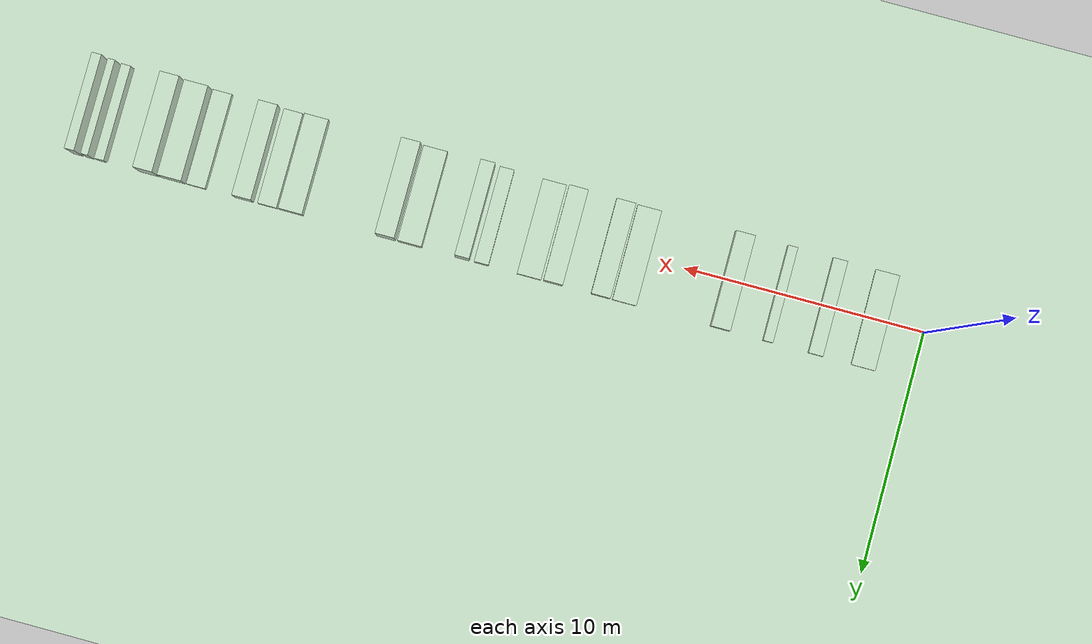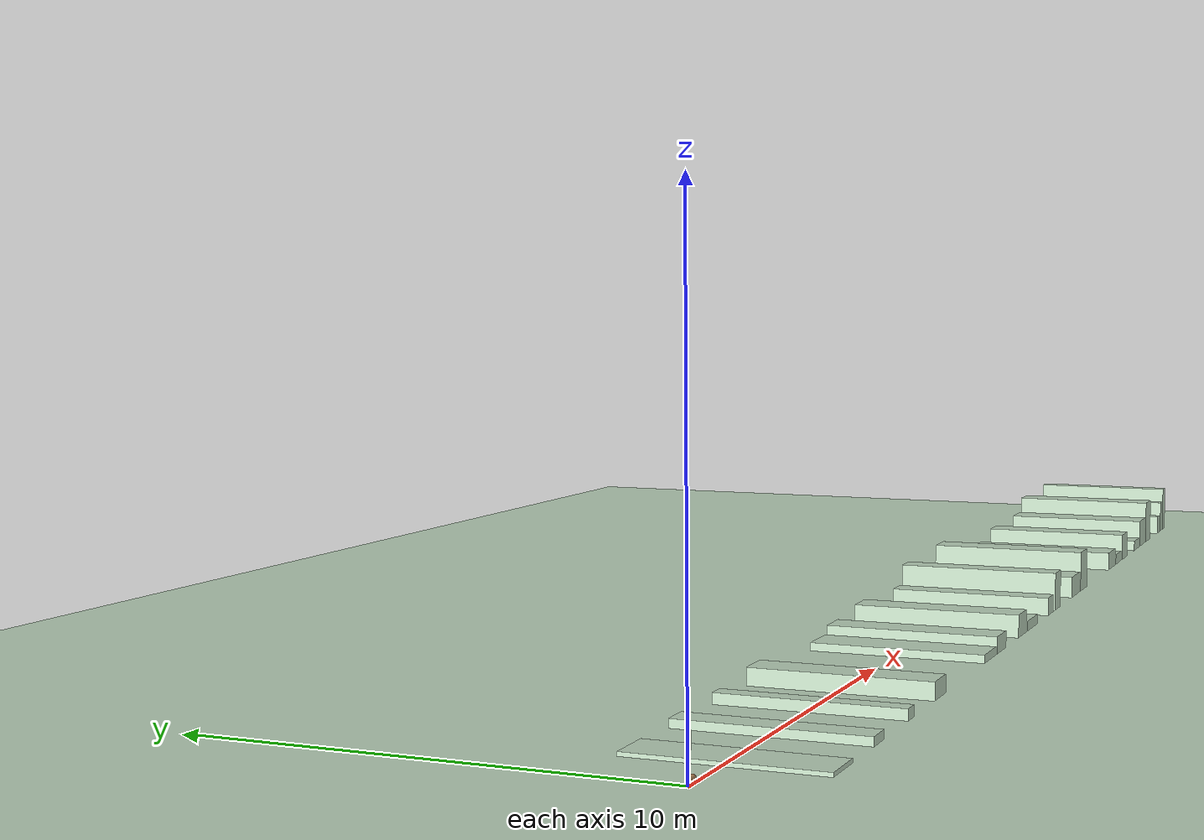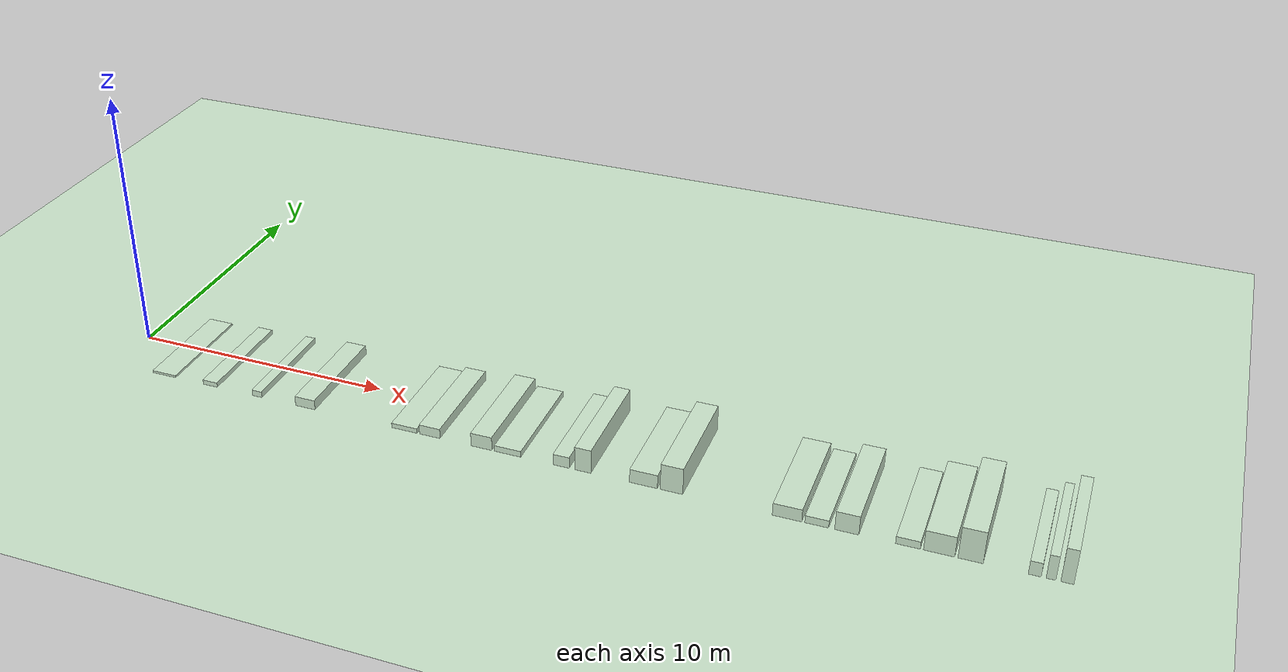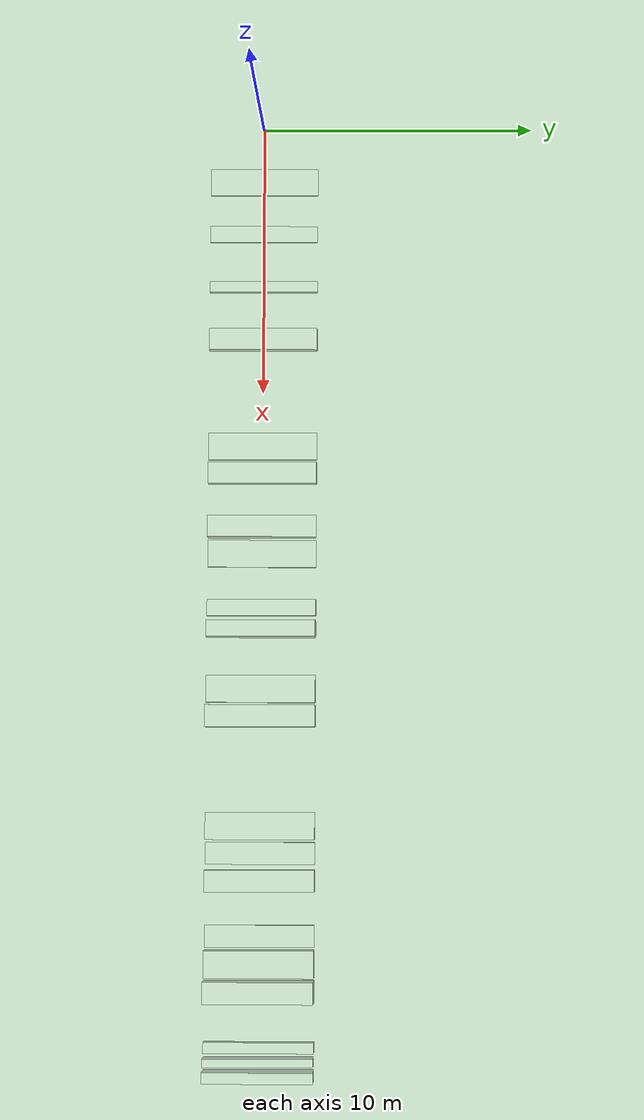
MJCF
<!--
Walker2D model for `Walker2d-v5`, based on openai/gym/Walker2d
modified by @kallinteris-Andreas
  - To not require `coordinate="global"`
  - Set feet friction to 1.9
-->
<mujoco model="walker2d">
  <compiler angle="degree" inertiafromgeom="true"/>
  <default>
    <joint armature="0.01" damping=".1" limited="true"/>
    <geom conaffinity="0" condim="3" contype="1" density="1000" friction=".7 .1 .1" rgba="0.8 0.6 .4 1"/>
  </default>
  <option integrator="RK4" timestep="0.002"/>
  <worldbody>
    <light cutoff="100" diffuse="1 1 1" dir="-0 0 -1.3" directional="true" exponent="1" pos="0 0 1.3" specular=".1 .1 .1"/>

    <geom conaffinity="1" condim="3" name="floor" pos="0 0 0" rgba="0.8 0.9 0.8 1" size="40 40 40" type="plane" material="MatPlane"/>

    <!-- 4 bumps -->
    <geom conaffinity="1" condim="3" name="bump1" pos="2 0 0" size="0.5 2 0.05" type="box" rgba="0.8 0.9 0.8 1" material="MatPlane"/>
    <geom conaffinity="1" condim="3" name="bump2" pos="4 0 0" size="0.3 2 0.15" type="box" rgba="0.8 0.9 0.8 1" material="MatPlane"/>
    <geom conaffinity="1" condim="3" name="bump3" pos="6 0 0" size="0.2 2 0.2" type="box" rgba="0.8 0.9 0.8 1" material="MatPlane"/>
    <geom conaffinity="1" condim="3" name="bump4" pos="8 0 0" size="0.4 2 0.35" type="box" rgba="0.8 0.9 0.8 1" material="MatPlane"/>
    <!-- 8 bumps -->
    <geom conaffinity="1" condim="3" name="bump5" pos="12 0 0" size="0.5 2 0.15" type="box" rgba="0.8 0.9 0.8 1" material="MatPlane"/>
    <geom conaffinity="1" condim="3" name="bump6" pos="13 0 0" size="0.4 2 0.35" type="box" rgba="0.8 0.9 0.8 1" material="MatPlane"/>
    <geom conaffinity="1" condim="3" name="bump7" pos="15 0 0" size="0.4 2 0.5" type="box" rgba="0.8 0.9 0.8 1" material="MatPlane"/>
    <geom conaffinity="1" condim="3" name="bump8" pos="16 0 0" size="0.5 2 0.2" type="box" rgba="0.8 0.9 0.8 1" material="MatPlane"/>
    <geom conaffinity="1" condim="3" name="bump9" pos="18 0 0" size="0.3 2 0.4" type="box" rgba="0.8 0.9 0.8 1" material="MatPlane"/>
    <geom conaffinity="1" condim="3" name="bump10" pos="18.8 0 0" size="0.3 2 0.9" type="box" rgba="0.8 0.9 0.8 1" material="MatPlane"/>
    <geom conaffinity="1" condim="3" name="bump11" pos="21 0 0" size="0.5 2 0.50" type="box" rgba="0.8 0.9 0.8 1" material="MatPlane"/>
    <geom conaffinity="1" condim="3" name="bump12" pos="22 0 0" size="0.4 2 1.00" type="box" rgba="0.8 0.9 0.8 1" material="MatPlane"/>
    <!-- 9 bumps -->
    <geom conaffinity="1" condim="3" name="bump13" pos="26 0 0" size="0.5 2 0.45" type="box" rgba="0.8 0.9 0.8 1" material="MatPlane"/>
    <geom conaffinity="1" condim="3" name="bump14" pos="27 0 0" size="0.4 2 0.25" type="box" rgba="0.8 0.9 0.8 1" material="MatPlane"/>
    <geom conaffinity="1" condim="3" name="bump15" pos="28 0 0" size="0.4 2 0.70" type="box" rgba="0.8 0.9 0.8 1" material="MatPlane"/>
    <geom conaffinity="1" condim="3" name="bump16" pos="30 0 0" size="0.4 2 0.25" type="box" rgba="0.8 0.9 0.8 1" material="MatPlane"/>
    <geom conaffinity="1" condim="3" name="bump17" pos="31 0 0" size="0.5 2 0.75" type="box" rgba="0.8 0.9 0.8 1" material="MatPlane"/>
    <geom conaffinity="1" condim="3" name="bump18" pos="32 0 0" size="0.4 2 1.2" type="box" rgba="0.8 0.9 0.8 1" material="MatPlane"/>
    <geom conaffinity="1" condim="3" name="bump19" pos="34 0 0" size="0.2 2 0.5" type="box" rgba="0.8 0.9 0.8 1" material="MatPlane"/>
    <geom conaffinity="1" condim="3" name="bump20" pos="34.5 0 0" size="0.15 2 0.9" type="box" rgba="0.8 0.9 0.8 1" material="MatPlane"/>
    <geom conaffinity="1" condim="3" name="bump21" pos="35 0 0" size="0.2 2 1.3" type="box" rgba="0.8 0.9 0.8 1" material="MatPlane"/>

    <body name="torso" pos="0 0 1.25">
      <camera name="track" mode="trackcom" pos="0 -3 -0.25" xyaxes="1 0 0 0 0 1"/>
      <joint armature="0" axis="1 0 0" damping="0" limited="false" name="rootx" pos="0 0 -1.25" stiffness="0" type="slide"/>
      <joint armature="0" axis="0 0 1" damping="0" limited="false" name="rootz" pos="0 0 -1.25" ref="1.25" stiffness="0" type="slide"/>
      <joint armature="0" axis="0 1 0" damping="0" limited="false" name="rooty" pos="0 0 0" stiffness="0" type="hinge"/>
      <geom friction="0.9" name="torso_geom" size="0.050000000000000003 0.19999999999999996" type="capsule"/>
      <body name="thigh" pos="0 0 -0.19999999999999996">
        <joint axis="0 -1 0" name="thigh_joint" pos="0 0 0" range="-150 0" type="hinge"/>
        <geom friction="0.9" pos="0 0 -0.22500000000000009" name="thigh_geom" size="0.050000000000000003 0.22500000000000003" type="capsule"/>
        <body name="leg" pos="0 0 -0.70000000000000007">
          <joint axis="0 -1 0" name="leg_joint" pos="0 0 0.25" range="-150 0" type="hinge"/>
          <geom friction="0.9" name="leg_geom" size="0.040000000000000001 0.25" type="capsule"/>
          <body name="foot" pos="0.20000000000000001 0 -0.34999999999999998">
            <joint axis="0 -1 0" name="foot_joint" pos="-0.20000000000000001 0 0.10000000000000001" range="-45 45" type="hinge"/>
            <geom friction="1.9" pos="-0.10000000000000001 0 0.10000000000000001" quat="0.70710678118654757 0 -0.70710678118654746 0" name="foot_geom" size="0.059999999999999998 0.10000000000000001" type="capsule"/>
          </body>
        </body>
      </body>
      <!-- copied and then replace thigh->thigh_left, leg->leg_left, foot->foot_right -->
      <body name="thigh_left" pos="0 0 -0.19999999999999996">
        <joint axis="0 -1 0" name="thigh_left_joint" pos="0 0 0" range="-150 0" type="hinge"/>
        <geom friction="0.9" name="thigh_left_geom" rgba=".7 .3 .6 1" size="0.050000000000000003 0.22500000000000003" pos="0 0 -0.22500000000000009" type="capsule"/>
        <body name="leg_left" pos="0 0 -0.70000000000000007">
          <joint axis="0 -1 0" name="leg_left_joint" pos="0 0 0.25" range="-150 0" type="hinge"/>
          <geom friction="0.9" name="leg_left_geom" rgba=".7 .3 .6 1" size="0.040000000000000001 0.25" type="capsule"/>
          <body name="foot_left" pos="0.20000000000000001 0 -0.34999999999999998">
            <joint axis="0 -1 0" name="foot_left_joint" pos="-0.20000000000000001 0 0.10000000000000001" range="-45 45" type="hinge"/>
            <geom friction="1.9" name="foot_left_geom" rgba=".7 .3 .6 1" size="0.059999999999999998 0.10000000000000001" pos="-0.10000000000000001 0 0.10000000000000001" type="capsule" quat="0.70710678118654757 0 -0.70710678118654746 0"/>
          </body>
        </body>
      </body>
    </body>
  </worldbody>
  <actuator>
    <motor ctrllimited="true" ctrlrange="-1.0 1.0" gear="100" joint="thigh_joint"/>
    <motor ctrllimited="true" ctrlrange="-1.0 1.0" gear="100" joint="leg_joint"/>
    <motor ctrllimited="true" ctrlrange="-1.0 1.0" gear="100" joint="foot_joint"/>
    <motor ctrllimited="true" ctrlrange="-1.0 1.0" gear="100" joint="thigh_left_joint"/>
    <motor ctrllimited="true" ctrlrange="-1.0 1.0" gear="100" joint="leg_left_joint"/>
    <motor ctrllimited="true" ctrlrange="-1.0 1.0" gear="100" joint="foot_left_joint"/>
  </actuator>
    <asset>
        <texture type="skybox" builtin="gradient" rgb1=".4 .5 .6" rgb2="0 0 0"
            width="100" height="100"/>
        <texture builtin="flat" height="1278" mark="cross" markrgb="1 1 1" name="texgeom" random="0.01" rgb1="0.8 0.6 0.4" rgb2="0.8 0.6 0.4" type="cube" width="127"/>
        <texture builtin="checker" height="100" name="texplane" rgb1="0.3 0.3 0.3" rgb2="0.8 0.8 0.8" type="2d" width="100"/>
        <material name="MatPlane" reflectance="0.5" shininess="1" specular="1" texrepeat="60 60" texture="texplane"/>
        <material name="geom" texture="texgeom" texuniform="true"/>
    </asset>
</mujoco>
